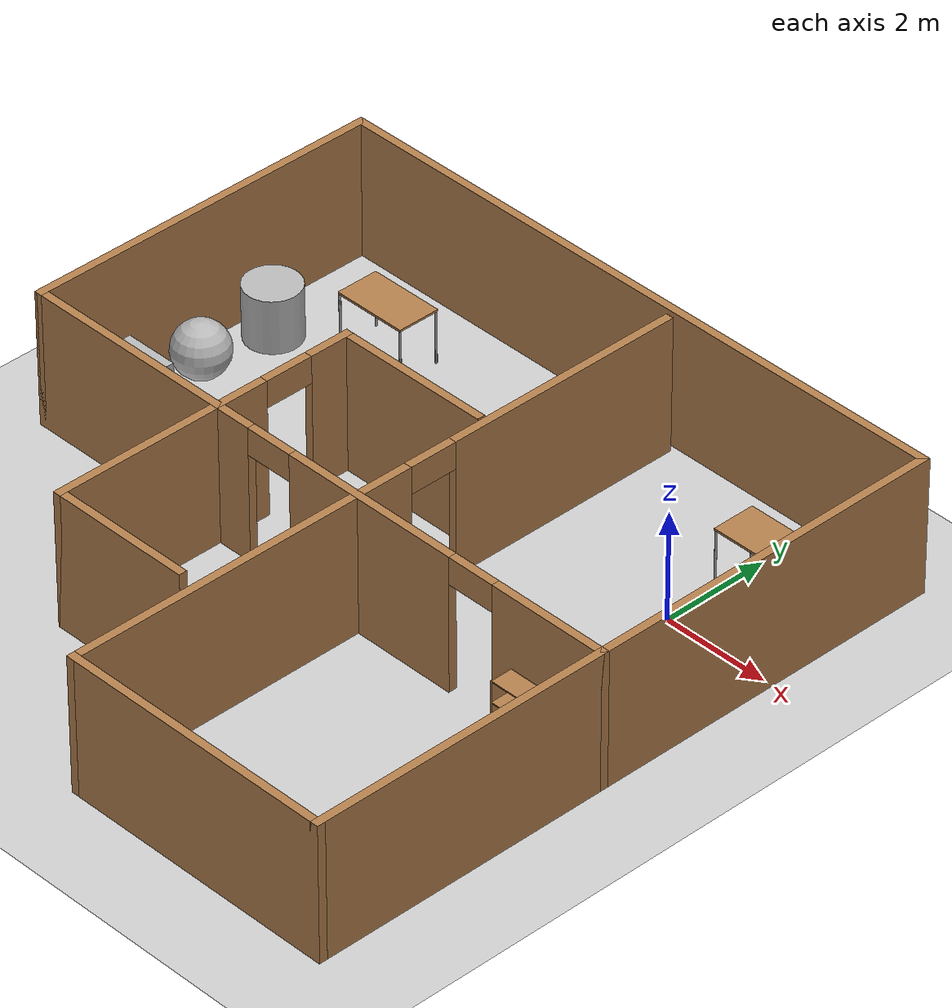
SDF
<sdf version="1.6">
 <world name="default">
  <light name="sun" type="directional">
   <pose>0 0 15 0 -0 0</pose>
   <diffuse>1 1 1 1</diffuse>
   <specular>0.1 0.1 0.1 1</specular>
   <attenuation>
    <range>1000</range>
    <constant>0.9</constant>
    <linear>0.01</linear>
    <quadratic>0.001</quadratic>
   </attenuation>
   <direction>-0.5 0.5 -1</direction>
  </light>
  <model name="ground_plane">
   <static>1</static>
   <link name="link">
    <collision name="collision">
     <geometry><plane><normal>0 0 1</normal><size>100 100</size></plane></geometry>
     <surface><friction><ode><mu>100</mu><mu2>50</mu2></ode></friction></surface>
    </collision>
    <visual name="visual">
     <cast_shadows>0</cast_shadows>
     <geometry><plane><normal>0 0 1</normal><size>100 100</size></plane></geometry>
     <material>
      <script><uri>file://media/materials/scripts/gazebo.material</uri><name>Gazebo/Grey</name></script>
     </material>
    </visual>
   </link>
  </model>
  <gravity>0 0 -9.8</gravity>
  <magnetic_field>6e-06 2.3e-05 -4.2e-05</magnetic_field>
  <atmosphere type="adiabatic"/>
  <physics name="default_physics" default="0" type="ode">
   <max_step_size>0.001</max_step_size>
   <real_time_factor>1</real_time_factor>
   <real_time_update_rate>1000</real_time_update_rate>
  </physics>
  <scene><ambient>0.4 0.4 0.4 1</ambient><background>0.7 0.7 0.7 1</background><shadows>1</shadows></scene>
  <spherical_coordinates>
   <surface_model>EARTH_WGS84</surface_model>
   <latitude_deg>0</latitude_deg>
   <longitude_deg>0</longitude_deg>
   <elevation>0</elevation>
   <heading_deg>0</heading_deg>
  </spherical_coordinates>
  <model name="building1">
   <pose>-3.95391 -2.89895 0 0 -0 0</pose>
   <link name="Wall_0">
    <collision name="Wall_0_Collision">
     <geometry><box><size>12.25 0.15 2.5</size></box></geometry>
     <pose>0 0 1.25 0 -0 0</pose>
    </collision>
    <visual name="Wall_0_Visual">
     <pose>0 0 1.25 0 -0 0</pose>
     <geometry><box><size>12.25 0.15 2.5</size></box></geometry>
     <material>
      <script><uri>file://media/materials/scripts/gazebo.material</uri><name>Gazebo/Wood</name></script>
      <ambient>1 1 1 1</ambient>
     </material>
    </visual>
    <pose>0 6.05 0 0 -0 0</pose>
   </link>
   <link name="Wall_1">
    <collision name="Wall_1_Collision">
     <geometry><box><size>12.25 0.15 2.5</size></box></geometry>
     <pose>0 0 1.25 0 -0 0</pose>
    </collision>
    <visual name="Wall_1_Visual">
     <pose>0 0 1.25 0 -0 0</pose>
     <geometry><box><size>12.25 0.15 2.5</size></box></geometry>
     <material>
      <script><uri>file://media/materials/scripts/gazebo.material</uri><name>Gazebo/Wood</name></script>
      <ambient>1 1 1 1</ambient>
     </material>
    </visual>
    <pose>6.05 0 0 0 0 -1.5708</pose>
   </link>
   <link name="Wall_11">
    <collision name="Wall_11_Collision">
     <geometry><box><size>3.25 0.15 2.5</size></box></geometry>
     <pose>0 0 1.25 0 -0 0</pose>
    </collision>
    <visual name="Wall_11_Visual">
     <pose>0 0 1.25 0 -0 0</pose>
     <geometry><box><size>3.25 0.15 2.5</size></box></geometry>
     <material>
      <script><uri>file://media/materials/scripts/gazebo.material</uri><name>Gazebo/Wood</name></script>
      <ambient>1 1 1 1</ambient>
     </material>
    </visual>
    <pose>-2.08535 -2.09426 0 0 0 -1.5708</pose>
   </link>
   <link name="Wall_12">
    <collision name="Wall_12_Collision">
     <geometry><box><size>2.75 0.15 2.5</size></box></geometry>
     <pose>0 0 1.25 0 -0 0</pose>
    </collision>
    <visual name="Wall_12_Visual">
     <pose>0 0 1.25 0 -0 0</pose>
     <geometry><box><size>2.75 0.15 2.5</size></box></geometry>
     <material>
      <script><uri>file://media/materials/scripts/gazebo.material</uri><name>Gazebo/Wood</name></script>
      <ambient>1 1 1 1</ambient>
     </material>
    </visual>
    <pose>-0.785354 -3.64426 0 0 -0 0</pose>
   </link>
   <link name="Wall_2">
    <collision name="Wall_2_Collision">
     <geometry><box><size>5.25 0.15 2.5</size></box></geometry>
     <pose>0 0 1.25 0 -0 0</pose>
    </collision>
    <visual name="Wall_2_Visual">
     <pose>0 0 1.25 0 -0 0</pose>
     <geometry><box><size>5.25 0.15 2.5</size></box></geometry>
     <material>
      <script><uri>file://media/materials/scripts/gazebo.material</uri><name>Gazebo/Wood</name></script>
      <ambient>1 1 1 1</ambient>
     </material>
    </visual>
    <pose>3.5 -6.05 0 0 -0 3.14159</pose>
   </link>
   <link name="Wall_3">
    <pose>0.95 -0.125 0 0 -0 1.5708</pose>
    <visual name="Wall_3_Visual_0">
     <pose>-2.70599 0 1.25 0 -0 0</pose>
     <geometry><box><size>6.58803 0.15 2.5</size></box></geometry>
     <material>
      <script><uri>file://media/materials/scripts/gazebo.material</uri><name>Gazebo/Wood</name></script>
      <ambient>1 1 1 1</ambient>
     </material>
    </visual>
    <collision name="Wall_3_Collision_0">
     <geometry><box><size>6.58803 0.15 2.5</size></box></geometry>
     <pose>-2.70599 0 1.25 0 -0 0</pose>
    </collision>
    <visual name="Wall_3_Visual_1">
     <pose>3.74402 0 1.25 0 -0 0</pose>
     <geometry><box><size>4.51197 0.15 2.5</size></box></geometry>
     <material>
      <script><uri>file://media/materials/scripts/gazebo.material</uri><name>Gazebo/Wood</name></script>
      <ambient>1 1 1 1</ambient>
     </material>
    </visual>
    <collision name="Wall_3_Collision_1">
     <geometry><box><size>4.51197 0.15 2.5</size></box></geometry>
     <pose>3.74402 0 1.25 0 -0 0</pose>
    </collision>
    <visual name="Wall_3_Visual_2">
     <pose>1.03803 0 2.25 0 -0 0</pose>
     <geometry><box><size>0.9 0.15 0.5</size></box></geometry>
     <material>
      <script><uri>file://media/materials/scripts/gazebo.material</uri><name>Gazebo/Wood</name></script>
      <ambient>1 1 1 1</ambient>
     </material>
    </visual>
    <collision name="Wall_3_Collision_2">
     <geometry><box><size>0.9 0.15 0.5</size></box></geometry>
     <pose>1.03803 0 2.25 0 -0 0</pose>
    </collision>
   </link>
   <link name="Wall_5">
    <collision name="Wall_5_Collision">
     <geometry><box><size>6.75 0.15 2.5</size></box></geometry>
     <pose>0 0 1.25 0 -0 0</pose>
    </collision>
    <visual name="Wall_5_Visual">
     <pose>0 0 1.25 0 -0 0</pose>
     <geometry><box><size>6.75 0.15 2.5</size></box></geometry>
     <material>
      <script><uri>file://media/materials/scripts/gazebo.material</uri><name>Gazebo/Wood</name></script>
      <ambient>1 1 1 1</ambient>
     </material>
    </visual>
    <pose>-6.05 2.75 0 0 0 -1.5708</pose>
   </link>
   <link name="Wall_6">
    <pose>0 -0.55 0 0 -0 0</pose>
    <visual name="Wall_6_Visual_0">
     <pose>-3.73718 0 1.25 0 -0 0</pose>
     <geometry><box><size>4.77564 0.15 2.5</size></box></geometry>
     <material>
      <script><uri>file://media/materials/scripts/gazebo.material</uri><name>Gazebo/Wood</name></script>
      <ambient>1 1 1 1</ambient>
     </material>
    </visual>
    <collision name="Wall_6_Collision_0">
     <geometry><box><size>4.77564 0.15 2.5</size></box></geometry>
     <pose>-3.73718 0 1.25 0 -0 0</pose>
    </collision>
    <visual name="Wall_6_Visual_1">
     <pose>1.25725 0 1.25 0 -0 0</pose>
     <geometry><box><size>3.41322 0.15 2.5</size></box></geometry>
     <material>
      <script><uri>file://media/materials/scripts/gazebo.material</uri><name>Gazebo/Wood</name></script>
      <ambient>1 1 1 1</ambient>
     </material>
    </visual>
    <collision name="Wall_6_Collision_1">
     <geometry><box><size>3.41322 0.15 2.5</size></box></geometry>
     <pose>1.25725 0 1.25 0 -0 0</pose>
    </collision>
    <visual name="Wall_6_Visual_2">
     <pose>4.99443 0 1.25 0 -0 0</pose>
     <geometry><box><size>2.26114 0.15 2.5</size></box></geometry>
     <material>
      <script><uri>file://media/materials/scripts/gazebo.material</uri><name>Gazebo/Wood</name></script>
      <ambient>1 1 1 1</ambient>
     </material>
    </visual>
    <collision name="Wall_6_Collision_2">
     <geometry><box><size>2.26114 0.15 2.5</size></box></geometry>
     <pose>4.99443 0 1.25 0 -0 0</pose>
    </collision>
    <visual name="Wall_6_Visual_3">
     <pose>-0.899364 0 2.25 0 -0 0</pose>
     <geometry><box><size>0.9 0.15 0.5</size></box></geometry>
     <material>
      <script><uri>file://media/materials/scripts/gazebo.material</uri><name>Gazebo/Wood</name></script>
      <ambient>1 1 1 1</ambient>
     </material>
    </visual>
    <collision name="Wall_6_Collision_3">
     <geometry><box><size>0.9 0.15 0.5</size></box></geometry>
     <pose>-0.899364 0 2.25 0 -0 0</pose>
    </collision>
    <visual name="Wall_6_Visual_4">
     <pose>3.41386 0 2.25 0 -0 0</pose>
     <geometry><box><size>0.9 0.15 0.5</size></box></geometry>
     <material>
      <script><uri>file://media/materials/scripts/gazebo.material</uri><name>Gazebo/Wood</name></script>
      <ambient>1 1 1 1</ambient>
     </material>
    </visual>
    <collision name="Wall_6_Collision_4">
     <geometry><box><size>0.9 0.15 0.5</size></box></geometry>
     <pose>3.41386 0 2.25 0 -0 0</pose>
    </collision>
   </link>
   <link name="Wall_8">
    <pose>-2.08535 0.755741 0 0 -0 1.5708</pose>
    <visual name="Wall_8_Visual_0">
     <pose>-0.87974 0 1.25 0 -0 0</pose>
     <geometry><box><size>0.990519 0.15 2.5</size></box></geometry>
     <material>
      <script><uri>file://media/materials/scripts/gazebo.material</uri><name>Gazebo/Wood</name></script>
      <ambient>1 1 1 1</ambient>
     </material>
    </visual>
    <collision name="Wall_8_Collision_0">
     <geometry><box><size>0.990519 0.15 2.5</size></box></geometry>
     <pose>-0.87974 0 1.25 0 -0 0</pose>
    </collision>
    <visual name="Wall_8_Visual_1">
     <pose>0.94526 0 1.25 0 -0 0</pose>
     <geometry><box><size>0.859481 0.15 2.5</size></box></geometry>
     <material>
      <script><uri>file://media/materials/scripts/gazebo.material</uri><name>Gazebo/Wood</name></script>
      <ambient>1 1 1 1</ambient>
     </material>
    </visual>
    <collision name="Wall_8_Collision_1">
     <geometry><box><size>0.859481 0.15 2.5</size></box></geometry>
     <pose>0.94526 0 1.25 0 -0 0</pose>
    </collision>
    <visual name="Wall_8_Visual_2">
     <pose>0.065519 0 2.25 0 -0 0</pose>
     <geometry><box><size>0.9 0.15 0.5</size></box></geometry>
     <material>
      <script><uri>file://media/materials/scripts/gazebo.material</uri><name>Gazebo/Wood</name></script>
      <ambient>1 1 1 1</ambient>
     </material>
    </visual>
    <collision name="Wall_8_Collision_2">
     <geometry><box><size>0.9 0.15 0.5</size></box></geometry>
     <pose>0.065519 0 2.25 0 -0 0</pose>
    </collision>
   </link>
   <link name="Wall_9">
    <collision name="Wall_9_Collision">
     <geometry><box><size>3 0.15 2.5</size></box></geometry>
     <pose>0 0 1.25 0 -0 0</pose>
    </collision>
    <visual name="Wall_9_Visual">
     <pose>0 0 1.25 0 -0 0</pose>
     <geometry><box><size>3 0.15 2.5</size></box></geometry>
     <material>
      <script><uri>file://media/materials/scripts/gazebo.material</uri><name>Gazebo/Wood</name></script>
      <ambient>1 1 1 1</ambient>
     </material>
    </visual>
    <pose>-0.660354 2.05574 0 0 -0 0</pose>
   </link>
   <static>1</static>
  </model>
  <model name="table">
   <static>0</static>
   <link name="link">
    <collision name="surface">
     <pose>0 0 1 0 -0 0</pose>
     <geometry><box><size>1.5 0.8 0.03</size></box></geometry>
     <surface><friction><ode><mu>0.6</mu><mu2>0.6</mu2></ode></friction></surface>
    </collision>
    <visual name="visual1">
     <pose>0 0 1 0 -0 0</pose>
     <geometry><box><size>1.4 0.8 0.04</size></box></geometry>
     <material>
      <script><uri>file://media/materials/scripts/gazebo.material</uri><name>Gazebo/Wood</name></script>
     </material>
    </visual>
    <collision name="front_left_leg">
     <pose>0.68 0.38 0.5 0 -0 0</pose>
     <geometry><cylinder><radius>0.02</radius><length>1</length></cylinder></geometry>
    </collision>
    <visual name="front_left_leg">
     <pose>0.68 0.38 0.5 0 -0 0</pose>
     <geometry><cylinder><radius>0.02</radius><length>1</length></cylinder></geometry>
     <material>
      <script><uri>file://media/materials/scripts/gazebo.material</uri><name>Gazebo/Grey</name></script>
     </material>
    </visual>
    <collision name="front_right_leg">
     <pose>0.68 -0.38 0.5 0 -0 0</pose>
     <geometry><cylinder><radius>0.02</radius><length>1</length></cylinder></geometry>
    </collision>
    <visual name="front_right_leg">
     <pose>0.68 -0.38 0.5 0 -0 0</pose>
     <geometry><cylinder><radius>0.02</radius><length>1</length></cylinder></geometry>
     <material>
      <script><uri>file://media/materials/scripts/gazebo.material</uri><name>Gazebo/Grey</name></script>
     </material>
    </visual>
    <collision name="back_right_leg">
     <pose>-0.68 -0.38 0.5 0 -0 0</pose>
     <geometry><cylinder><radius>0.02</radius><length>1</length></cylinder></geometry>
    </collision>
    <visual name="back_right_leg">
     <pose>-0.68 -0.38 0.5 0 -0 0</pose>
     <geometry><cylinder><radius>0.02</radius><length>1</length></cylinder></geometry>
     <material>
      <script><uri>file://media/materials/scripts/gazebo.material</uri><name>Gazebo/Grey</name></script>
     </material>
    </visual>
    <collision name="back_left_leg">
     <pose>-0.68 0.38 0.5 0 -0 0</pose>
     <geometry><cylinder><radius>0.02</radius><length>1</length></cylinder></geometry>
    </collision>
    <visual name="back_left_leg">
     <pose>-0.68 0.38 0.5 0 -0 0</pose>
     <geometry><cylinder><radius>0.02</radius><length>1</length></cylinder></geometry>
     <material>
      <script><uri>file://media/materials/scripts/gazebo.material</uri><name>Gazebo/Grey</name></script>
     </material>
    </visual>
    <inertial>
     <inertia><ixx>1</ixx><ixy>0</ixy><ixz>0</ixz><iyy>1</iyy><iyz>0</iyz><izz>1</izz></inertia>
     <mass>1</mass>
    </inertial>
   </link>
   <pose>-7.7263 1.57329 -7e-06 0 -0 0</pose>
  </model>
  <model name="bookshelf">
   <static>1</static>
   <link name="link">
    <inertial><mass>1</mass></inertial>
    <collision name="back">
     <pose>0 0.005 0.6 0 -0 0</pose>
     <geometry><box><size>0.9 0.01 1.2</size></box></geometry>
    </collision>
    <visual name="visual1">
     <pose>0 0.005 0.6 0 -0 0</pose>
     <geometry><box><size>0.9 0.01 1.2</size></box></geometry>
     <material>
      <script><uri>file://media/materials/scripts/gazebo.material</uri><name>Gazebo/Wood</name></script>
     </material>
    </visual>
    <collision name="left_side">
     <pose>0.45 -0.195 0.6 0 -0 0</pose>
     <geometry><box><size>0.02 0.4 1.2</size></box></geometry>
    </collision>
    <visual name="visual2">
     <pose>0.45 -0.195 0.6 0 -0 0</pose>
     <geometry><box><size>0.02 0.4 1.2</size></box></geometry>
     <material>
      <script><uri>file://media/materials/scripts/gazebo.material</uri><name>Gazebo/Wood</name></script>
     </material>
    </visual>
    <collision name="right_side">
     <pose>-0.45 -0.195 0.6 0 -0 0</pose>
     <geometry><box><size>0.02 0.4 1.2</size></box></geometry>
    </collision>
    <visual name="visual3">
     <pose>-0.45 -0.195 0.6 0 -0 0</pose>
     <geometry><box><size>0.02 0.4 1.2</size></box></geometry>
     <material>
      <script><uri>file://media/materials/scripts/gazebo.material</uri><name>Gazebo/Wood</name></script>
     </material>
    </visual>
    <collision name="bottom">
     <pose>0 -0.195 0.03 0 -0 0</pose>
     <geometry><box><size>0.88 0.4 0.06</size></box></geometry>
    </collision>
    <visual name="visual4">
     <pose>0 -0.195 0.03 0 -0 0</pose>
     <geometry><box><size>0.88 0.4 0.06</size></box></geometry>
     <material>
      <script><uri>file://media/materials/scripts/gazebo.material</uri><name>Gazebo/Wood</name></script>
     </material>
    </visual>
    <collision name="top">
     <pose>0 -0.195 1.19 0 -0 0</pose>
     <geometry><box><size>0.88 0.4 0.02</size></box></geometry>
    </collision>
    <visual name="visual5">
     <pose>0 -0.195 1.19 0 -0 0</pose>
     <geometry><box><size>0.88 0.4 0.02</size></box></geometry>
     <material>
      <script><uri>file://media/materials/scripts/gazebo.material</uri><name>Gazebo/Wood</name></script>
     </material>
    </visual>
    <collision name="low_shelf">
     <pose>0 -0.195 0.43 0 -0 0</pose>
     <geometry><box><size>0.88 0.4 0.02</size></box></geometry>
    </collision>
    <visual name="visual6">
     <pose>0 -0.195 0.43 0 -0 0</pose>
     <geometry><box><size>0.88 0.4 0.02</size></box></geometry>
     <material>
      <script><uri>file://media/materials/scripts/gazebo.material</uri><name>Gazebo/Wood</name></script>
     </material>
    </visual>
    <collision name="high_shelf">
     <pose>0 -0.195 0.8 0 -0 0</pose>
     <geometry><box><size>0.88 0.4 0.02</size></box></geometry>
    </collision>
    <visual name="visual7">
     <pose>0 -0.195 0.8 0 -0 0</pose>
     <geometry><box><size>0.88 0.4 0.02</size></box></geometry>
     <material>
      <script><uri>file://media/materials/scripts/gazebo.material</uri><name>Gazebo/Wood</name></script>
     </material>
    </visual>
   </link>
   <pose>0.769966 -3.53438 0 0 -0 0</pose>
  </model>
  <model name="textured_shapes">
   <pose>-9.31272 -0.887092 0.5 0 -0 0</pose>
   <link name="box">
    <pose>0 -1.5 0 0 -0 0</pose>
    <collision name="collision"><geometry><box><size>1 1 1</size></box></geometry></collision>
    <visual name="visual">
     <geometry><box><size>1 1 1</size></box></geometry>
     <material>
      <script>
       <uri>model://textured_shapes/materials/scripts</uri>
       <uri>model://textured_shapes/materials/textures</uri>
       <name>TexturedShape/Squares</name>
      </script>
     </material>
    </visual>
    <inertial>
     <inertia><ixx>1</ixx><ixy>0</ixy><ixz>0</ixz><iyy>1</iyy><iyz>0</iyz><izz>1</izz></inertia>
     <mass>1</mass>
    </inertial>
   </link>
   <link name="sphere">
    <collision name="collision"><geometry><sphere><radius>0.5</radius></sphere></geometry></collision>
    <visual name="visual">
     <geometry><sphere><radius>0.5</radius></sphere></geometry>
     <material>
      <script>
       <uri>model://textured_shapes/materials/scripts</uri>
       <uri>model://textured_shapes/materials/textures</uri>
       <name>TexturedShape/Squares</name>
      </script>
     </material>
    </visual>
    <inertial>
     <inertia><ixx>1</ixx><ixy>0</ixy><ixz>0</ixz><iyy>1</iyy><iyz>0</iyz><izz>1</izz></inertia>
     <mass>1</mass>
    </inertial>
   </link>
   <link name="cylinder">
    <pose>0 1.5 0 0 -0 0</pose>
    <collision name="collision">
     <geometry><cylinder><radius>0.5</radius><length>1</length></cylinder></geometry>
    </collision>
    <visual name="visual">
     <geometry><cylinder><radius>0.5</radius><length>1</length></cylinder></geometry>
     <material>
      <script>
       <uri>model://textured_shapes/materials/scripts</uri>
       <uri>model://textured_shapes/materials/textures</uri>
       <name>TexturedShape/Squares</name>
      </script>
     </material>
    </visual>
    <inertial>
     <inertia><ixx>1</ixx><ixy>0</ixy><ixz>0</ixz><iyy>1</iyy><iyz>0</iyz><izz>1</izz></inertia>
     <mass>1</mass>
    </inertial>
   </link>
  </model>
  <model name="table_0">
   <static>0</static>
   <link name="link">
    <collision name="surface">
     <pose>0 0 1 0 -0 0</pose>
     <geometry><box><size>1.5 0.8 0.03</size></box></geometry>
     <surface><friction><ode><mu>0.6</mu><mu2>0.6</mu2></ode></friction></surface>
    </collision>
    <visual name="visual1">
     <pose>0 0 1 0 -0 0</pose>
     <geometry><box><size>1.4 0.8 0.04</size></box></geometry>
     <material>
      <script><uri>file://media/materials/scripts/gazebo.material</uri><name>Gazebo/Wood</name></script>
     </material>
    </visual>
    <collision name="front_left_leg">
     <pose>0.68 0.38 0.5 0 -0 0</pose>
     <geometry><cylinder><radius>0.02</radius><length>1</length></cylinder></geometry>
    </collision>
    <visual name="front_left_leg">
     <pose>0.68 0.38 0.5 0 -0 0</pose>
     <geometry><cylinder><radius>0.02</radius><length>1</length></cylinder></geometry>
     <material>
      <script><uri>file://media/materials/scripts/gazebo.material</uri><name>Gazebo/Grey</name></script>
     </material>
    </visual>
    <collision name="front_right_leg">
     <pose>0.68 -0.38 0.5 0 -0 0</pose>
     <geometry><cylinder><radius>0.02</radius><length>1</length></cylinder></geometry>
    </collision>
    <visual name="front_right_leg">
     <pose>0.68 -0.38 0.5 0 -0 0</pose>
     <geometry><cylinder><radius>0.02</radius><length>1</length></cylinder></geometry>
     <material>
      <script><uri>file://media/materials/scripts/gazebo.material</uri><name>Gazebo/Grey</name></script>
     </material>
    </visual>
    <collision name="back_right_leg">
     <pose>-0.68 -0.38 0.5 0 -0 0</pose>
     <geometry><cylinder><radius>0.02</radius><length>1</length></cylinder></geometry>
    </collision>
    <visual name="back_right_leg">
     <pose>-0.68 -0.38 0.5 0 -0 0</pose>
     <geometry><cylinder><radius>0.02</radius><length>1</length></cylinder></geometry>
     <material>
      <script><uri>file://media/materials/scripts/gazebo.material</uri><name>Gazebo/Grey</name></script>
     </material>
    </visual>
    <collision name="back_left_leg">
     <pose>-0.68 0.38 0.5 0 -0 0</pose>
     <geometry><cylinder><radius>0.02</radius><length>1</length></cylinder></geometry>
    </collision>
    <visual name="back_left_leg">
     <pose>-0.68 0.38 0.5 0 -0 0</pose>
     <geometry><cylinder><radius>0.02</radius><length>1</length></cylinder></geometry>
     <material>
      <script><uri>file://media/materials/scripts/gazebo.material</uri><name>Gazebo/Grey</name></script>
     </material>
    </visual>
    <inertial>
     <inertia><ixx>1</ixx><ixy>0</ixy><ixz>0</ixz><iyy>1</iyy><iyz>0</iyz><izz>1</izz></inertia>
     <mass>1</mass>
    </inertial>
   </link>
   <pose>0.524999 1.5263 -1e-06 -1e-06 1e-06 0</pose>
  </model>
 </world>
</sdf>
